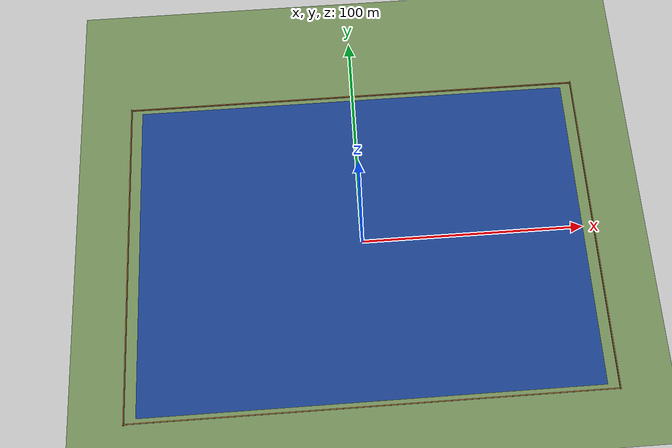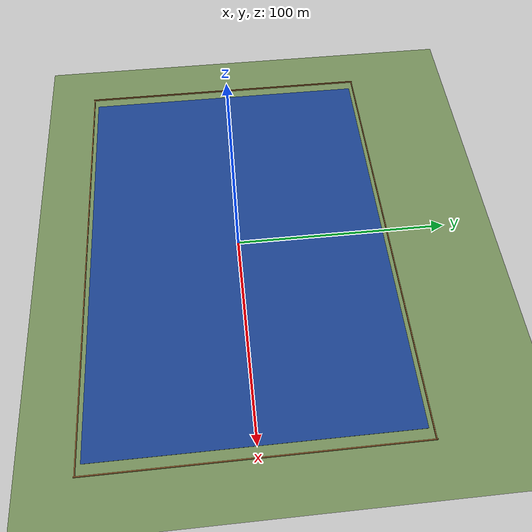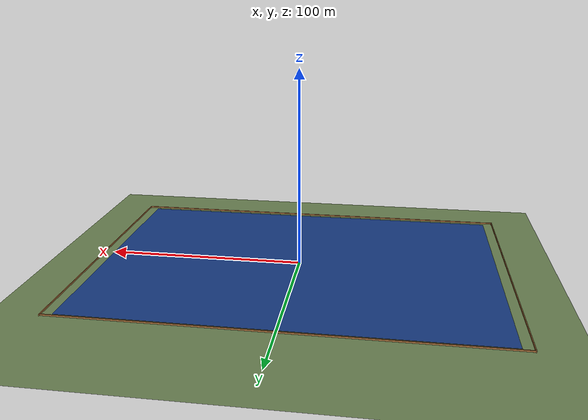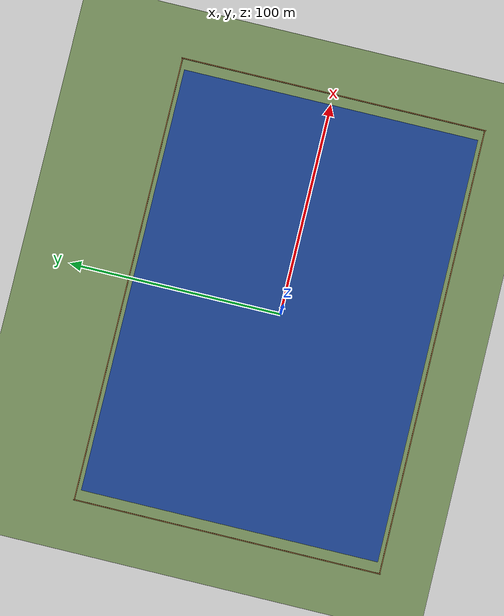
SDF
<?xml version="1.0" ?>
<sdf version="1.6">
  <world name="lake_patrol">
    <include>
      <uri>model://ground_plane</uri>
    </include>
    <include>
      <uri>model://sun</uri>
    </include>

    <!-- 岸边地面: 大平面, 激光可见 -->
    <model name="shore_ground">
      <static>true</static>
      <pose>0 0 0 0 0 0</pose>
      <link name="link">
        <collision name="collision">
          <geometry>
            <plane><normal>0 0 1</normal><size>600 600</size></plane>
          </geometry>
        </collision>
        <visual name="visual">
          <geometry>
            <plane><normal>0 0 1</normal><size>600 600</size></plane>
          </geometry>
          <material>
            <ambient>0.45 0.55 0.35 1</ambient>
            <diffuse>0.45 0.55 0.35 1</diffuse>
          </material>
        </visual>
      </link>
    </model>

    <model name="water">
      <static>true</static>
      <pose>0 0 -0.05 0 0 0</pose>
      <link name="link">
        <visual name="visual">
          <geometry>
            <plane><normal>0 0 1</normal><size>200 140</size></plane>
          </geometry>
          <material>
            <ambient>0.08 0.20 0.45 1</ambient>
            <diffuse>0.10 0.25 0.55 1</diffuse>
            <specular>0.8 0.8 0.9 1</specular>
          </material>
        </visual>
        <!-- 无 collision: 狗理论上能走进去 —— keepout/守卫必须拦住它
             (这正是 M3 验收要证明的行为) -->
      </link>
    </model>

    <!-- 岸线围栏段 (激光可见, 构成自然导航边界), 四角留口 -->
    <model name="fence_n">
      <static>true</static>
      <pose>0 72 0.4 0 0 0</pose>
      <link name="link">
        <collision name="c"><geometry><box><size>210 0.4 0.8</size></box></geometry></collision>
        <visual name="v"><geometry><box><size>210 0.4 0.8</size></box></geometry>
          <material><ambient>0.6 0.4 0.2 1</ambient></material></visual>
      </link>
    </model>
    <model name="fence_s">
      <static>true</static>
      <pose>0 -72 0.4 0 0 0</pose>
      <link name="link">
        <collision name="c"><geometry><box><size>210 0.4 0.8</size></box></geometry></collision>
        <visual name="v"><geometry><box><size>210 0.4 0.8</size></box></geometry>
          <material><ambient>0.6 0.4 0.2 1</ambient></material></visual>
      </link>
    </model>
    <model name="fence_e">
      <static>true</static>
      <pose>105 0 0.4 0 0 0</pose>
      <link name="link">
        <collision name="c"><geometry><box><size>0.4 145 0.8</size></box></geometry></collision>
        <visual name="v"><geometry><box><size>0.4 145 0.8</size></box></geometry>
          <material><ambient>0.6 0.4 0.2 1</ambient></material></visual>
      </link>
    </model>
    <model name="fence_w">
      <static>true</static>
      <pose>-105 0 0.4 0 0 0</pose>
      <link name="link">
        <collision name="c"><geometry><box><size>0.4 145 0.8</size></box></geometry></collision>
        <visual name="v"><geometry><box><size>0.4 145 0.8</size></box></geometry>
          <material><ambient>0.6 0.4 0.2 1</ambient></material></visual>
      </link>
    </model>

    <!-- 漂浮假人 (落水者): 半沉的亮色人形, 供相机检测 -->
    <model name="drowning_dummy_1">
      <static>false</static>
      <pose>20 -10 -0.15 0 0 0.6</pose>
      <link name="body">
        <inertial>
          <mass>60</mass>
          <inertia><ixx>8.0</ixx><iyy>8.0</iyy><izz>2.0</izz>
            <ixy>0</ixy><ixz>0</ixz><iyz>0</iyz></inertia>
        </inertial>
        <collision name="c">
          <geometry><box><size>0.5 0.25 0.15</size></box></geometry>
        </collision>
        <visual name="v">
          <geometry><box><size>0.5 0.25 0.15</size></box></geometry>
          <material>
            <ambient>0.95 0.55 0.10 1</ambient>
            <diffuse>1.0 0.60 0.10 1</diffuse>
          </material>
        </visual>
      </link>
    </model>

    <!-- 第二个假人 (更远, 测距离档) -->
    <model name="drowning_dummy_2">
      <static>false</static>
      <pose>-60 30 -0.15 0 0 -0.4</pose>
      <link name="body">
        <inertial>
          <mass>60</mass>
          <inertia><ixx>8.0</ixx><iyy>8.0</iyy><izz>2.0</izz>
            <ixy>0</ixy><ixz>0</ixz><iyz>0</iyz></inertia>
        </inertial>
        <collision name="c">
          <geometry><box><size>0.5 0.25 0.15</size></box></geometry>
        </collision>
        <visual name="v">
          <geometry><box><size>0.5 0.25 0.15</size></box></geometry>
          <material>
            <ambient>0.95 0.55 0.10 1</ambient>
            <diffuse>1.0 0.60 0.10 1</diffuse>
          </material>
        </visual>
      </link>
    </model>
  </world>
</sdf>
